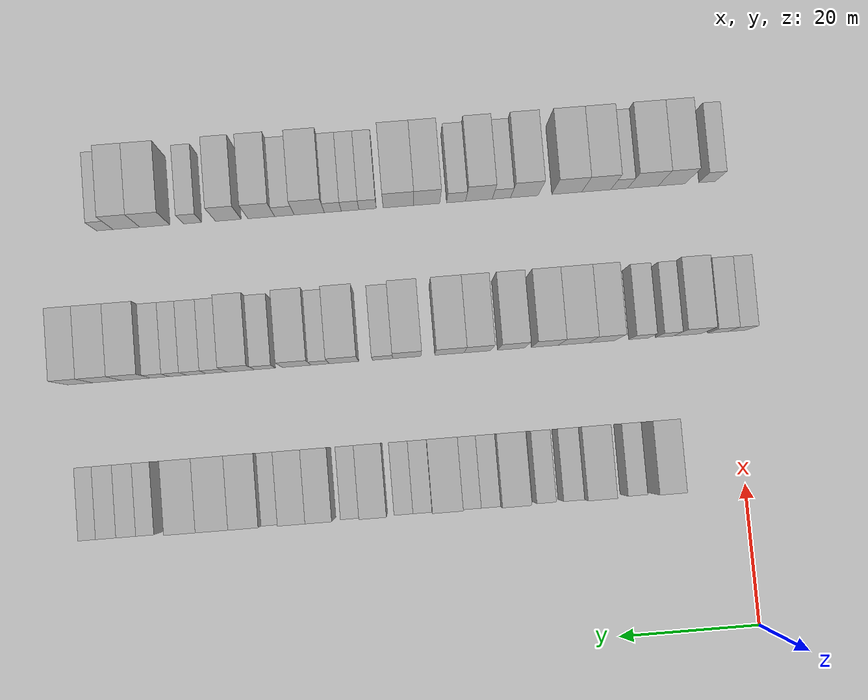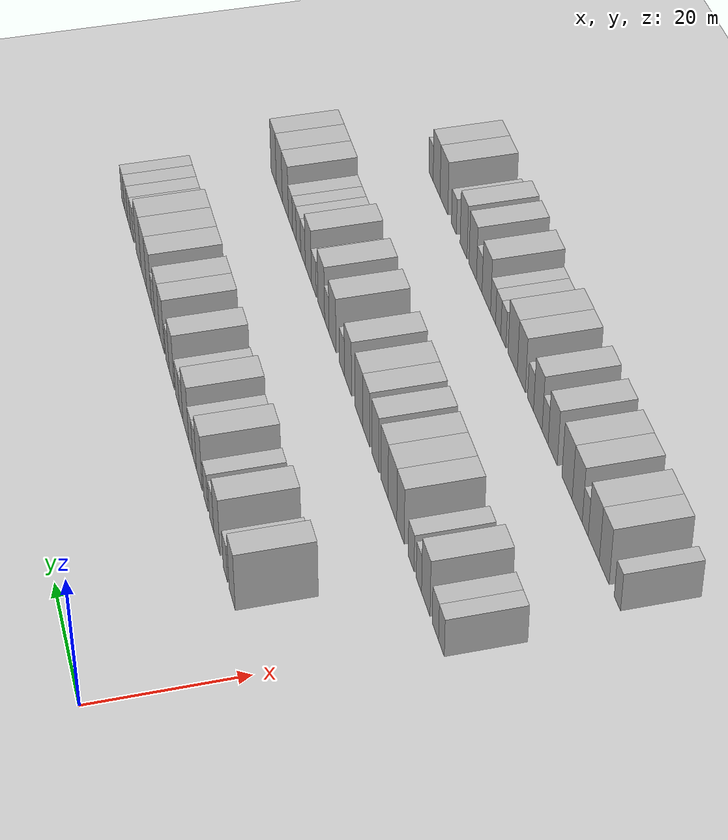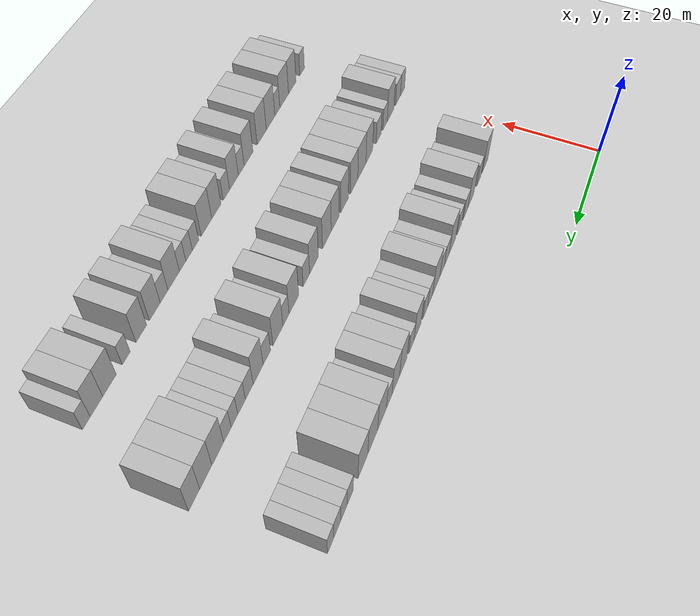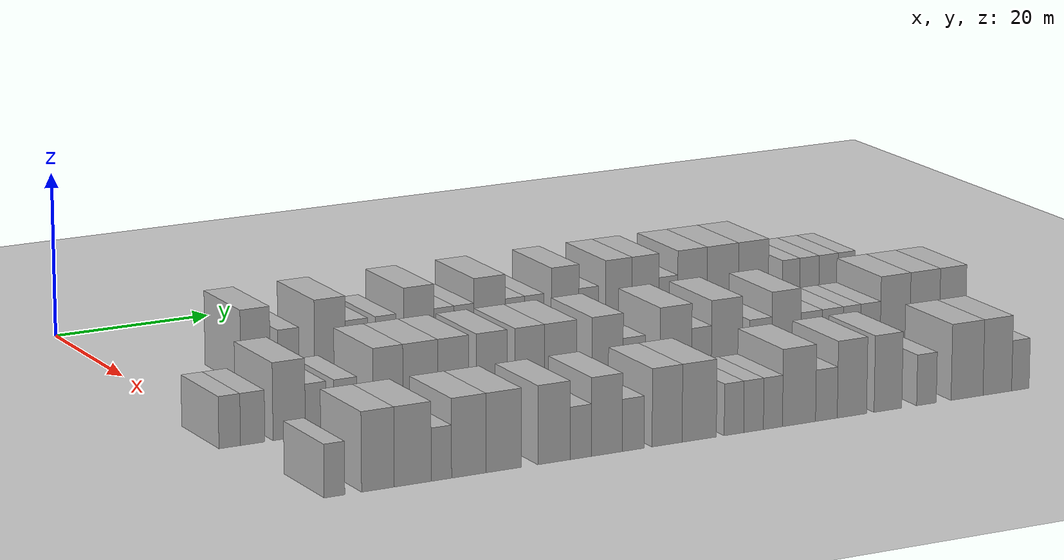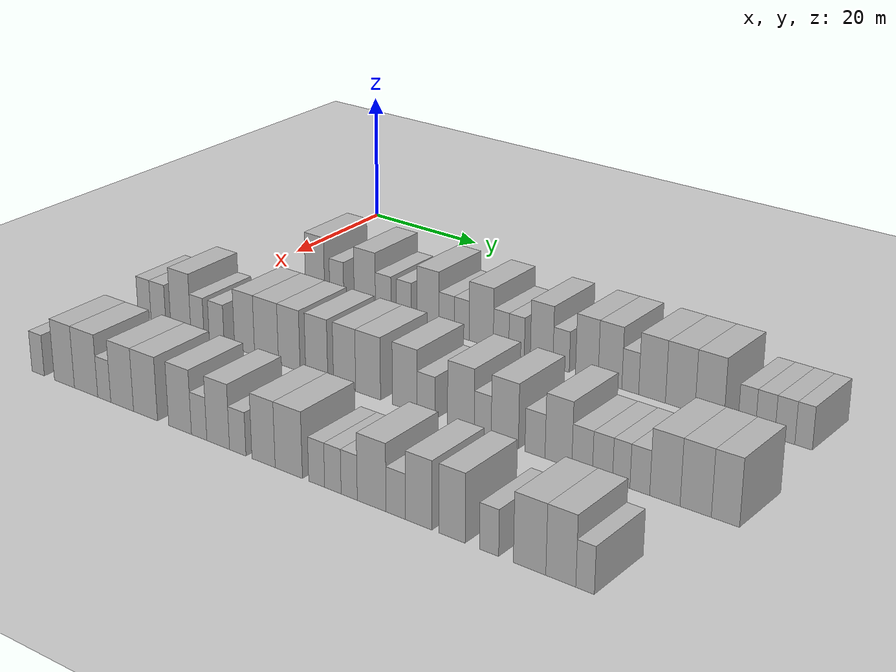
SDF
<sdf version="1.6">
 <world name="default">
  <include><name>ground_plane_1</name><uri>model://HANNAS_ground_plane</uri></include>
  <model name="building_96">
   <static>1</static>
   <pose>25.0000 12.4111 0 0.000000 0.000000 0.000000</pose>
   <link name="link">
    <pose>0 0 4.50 0 0 0</pose>
    <collision name="collision"><geometry><box><size>10.0000 3.7459 9.0000</size></box></geometry></collision>
    <visual name="visual">
     <cast_shadows>0</cast_shadows>
     <geometry><box><size>10.0000 3.7459 9.0000</size></box></geometry>
     <material>
      <script>
       <uri>model://HANNAS_wall/materials/scripts</uri>
       <uri>model://HANNAS_wall/materials/textures</uri>
       <name>vrc/HANNAS_wall</name>
      </script>
     </material>
    </visual>
   </link>
  </model>
  <model name="building_97">
   <static>1</static>
   <pose>25.0000 16.6380 0 0.000000 0.000000 0.000000</pose>
   <link name="link">
    <pose>0 0 3.00 0 0 0</pose>
    <collision name="collision"><geometry><box><size>10.0000 2.7080 6.0000</size></box></geometry></collision>
    <visual name="visual">
     <cast_shadows>0</cast_shadows>
     <geometry><box><size>10.0000 2.7080 6.0000</size></box></geometry>
     <material>
      <script>
       <uri>model://HANNAS_wall/materials/scripts</uri>
       <uri>model://HANNAS_wall/materials/textures</uri>
       <name>vrc/HANNAS_wall</name>
      </script>
     </material>
    </visual>
   </link>
  </model>
  <model name="building_98">
   <static>1</static>
   <pose>25.0000 21.9970 0 0.000000 0.000000 0.000000</pose>
   <link name="link">
    <pose>0 0 4.50 0 0 0</pose>
    <collision name="collision"><geometry><box><size>10.0000 4.0098 9.0000</size></box></geometry></collision>
    <visual name="visual">
     <cast_shadows>0</cast_shadows>
     <geometry><box><size>10.0000 4.0098 9.0000</size></box></geometry>
     <material>
      <script>
       <uri>model://HANNAS_wall/materials/scripts</uri>
       <uri>model://HANNAS_wall/materials/textures</uri>
       <name>vrc/HANNAS_wall</name>
      </script>
     </material>
    </visual>
   </link>
  </model>
  <model name="building_99">
   <static>1</static>
   <pose>25.0000 25.4494 0 0.000000 0.000000 0.000000</pose>
   <link name="link">
    <pose>0 0 3.00 0 0 0</pose>
    <collision name="collision"><geometry><box><size>10.0000 2.8951 6.0000</size></box></geometry></collision>
    <visual name="visual">
     <cast_shadows>0</cast_shadows>
     <geometry><box><size>10.0000 2.8951 6.0000</size></box></geometry>
     <material>
      <script>
       <uri>model://HANNAS_wall/materials/scripts</uri>
       <uri>model://HANNAS_wall/materials/textures</uri>
       <name>vrc/HANNAS_wall</name>
      </script>
     </material>
    </visual>
   </link>
  </model>
  <model name="building_100">
   <static>1</static>
   <pose>25.0000 29.2543 0 0.000000 0.000000 0.000000</pose>
   <link name="link">
    <pose>0 0 3.00 0 0 0</pose>
    <collision name="collision"><geometry><box><size>10.0000 2.7147 6.0000</size></box></geometry></collision>
    <visual name="visual">
     <cast_shadows>0</cast_shadows>
     <geometry><box><size>10.0000 2.7147 6.0000</size></box></geometry>
     <material>
      <script>
       <uri>model://HANNAS_wall/materials/scripts</uri>
       <uri>model://HANNAS_wall/materials/textures</uri>
       <name>vrc/HANNAS_wall</name>
      </script>
     </material>
    </visual>
   </link>
  </model>
  <model name="building_101">
   <static>1</static>
   <pose>25.0000 33.6059 0 0.000000 0.000000 0.000000</pose>
   <link name="link">
    <pose>0 0 4.50 0 0 0</pose>
    <collision name="collision"><geometry><box><size>10.0000 3.9884 9.0000</size></box></geometry></collision>
    <visual name="visual">
     <cast_shadows>0</cast_shadows>
     <geometry><box><size>10.0000 3.9884 9.0000</size></box></geometry>
     <material>
      <script>
       <uri>model://HANNAS_wall/materials/scripts</uri>
       <uri>model://HANNAS_wall/materials/textures</uri>
       <name>vrc/HANNAS_wall</name>
      </script>
     </material>
    </visual>
   </link>
  </model>
  <model name="building_102">
   <static>1</static>
   <pose>25.0000 36.9413 0 0.000000 0.000000 0.000000</pose>
   <link name="link">
    <pose>0 0 3.00 0 0 0</pose>
    <collision name="collision"><geometry><box><size>10.0000 2.6824 6.0000</size></box></geometry></collision>
    <visual name="visual">
     <cast_shadows>0</cast_shadows>
     <geometry><box><size>10.0000 2.6824 6.0000</size></box></geometry>
     <material>
      <script>
       <uri>model://HANNAS_wall/materials/scripts</uri>
       <uri>model://HANNAS_wall/materials/textures</uri>
       <name>vrc/HANNAS_wall</name>
      </script>
     </material>
    </visual>
   </link>
  </model>
  <model name="building_103">
   <static>1</static>
   <pose>25.0000 39.5929 0 0.000000 0.000000 0.000000</pose>
   <link name="link">
    <pose>0 0 3.00 0 0 0</pose>
    <collision name="collision"><geometry><box><size>10.0000 2.6208 6.0000</size></box></geometry></collision>
    <visual name="visual">
     <cast_shadows>0</cast_shadows>
     <geometry><box><size>10.0000 2.6208 6.0000</size></box></geometry>
     <material>
      <script>
       <uri>model://HANNAS_wall/materials/scripts</uri>
       <uri>model://HANNAS_wall/materials/textures</uri>
       <name>vrc/HANNAS_wall</name>
      </script>
     </material>
    </visual>
   </link>
  </model>
  <model name="building_104">
   <static>1</static>
   <pose>25.0000 42.9939 0 0.000000 0.000000 0.000000</pose>
   <link name="link">
    <pose>0 0 4.50 0 0 0</pose>
    <collision name="collision"><geometry><box><size>10.0000 4.1811 9.0000</size></box></geometry></collision>
    <visual name="visual">
     <cast_shadows>0</cast_shadows>
     <geometry><box><size>10.0000 4.1811 9.0000</size></box></geometry>
     <material>
      <script>
       <uri>model://HANNAS_wall/materials/scripts</uri>
       <uri>model://HANNAS_wall/materials/textures</uri>
       <name>vrc/HANNAS_wall</name>
      </script>
     </material>
    </visual>
   </link>
  </model>
  <model name="building_105">
   <static>1</static>
   <pose>25.0000 46.4009 0 0.000000 0.000000 0.000000</pose>
   <link name="link">
    <pose>0 0 3.00 0 0 0</pose>
    <collision name="collision"><geometry><box><size>10.0000 2.6329 6.0000</size></box></geometry></collision>
    <visual name="visual">
     <cast_shadows>0</cast_shadows>
     <geometry><box><size>10.0000 2.6329 6.0000</size></box></geometry>
     <material>
      <script>
       <uri>model://HANNAS_wall/materials/scripts</uri>
       <uri>model://HANNAS_wall/materials/textures</uri>
       <name>vrc/HANNAS_wall</name>
      </script>
     </material>
    </visual>
   </link>
  </model>
  <model name="building_106">
   <static>1</static>
   <pose>25.0000 49.0237 0 0.000000 0.000000 0.000000</pose>
   <link name="link">
    <pose>0 0 3.00 0 0 0</pose>
    <collision name="collision"><geometry><box><size>10.0000 2.6128 6.0000</size></box></geometry></collision>
    <visual name="visual">
     <cast_shadows>0</cast_shadows>
     <geometry><box><size>10.0000 2.6128 6.0000</size></box></geometry>
     <material>
      <script>
       <uri>model://HANNAS_wall/materials/scripts</uri>
       <uri>model://HANNAS_wall/materials/textures</uri>
       <name>vrc/HANNAS_wall</name>
      </script>
     </material>
    </visual>
   </link>
  </model>
  <model name="building_107">
   <static>1</static>
   <pose>25.0000 53.1922 0 0.000000 0.000000 0.000000</pose>
   <link name="link">
    <pose>0 0 4.50 0 0 0</pose>
    <collision name="collision"><geometry><box><size>10.0000 3.7241 9.0000</size></box></geometry></collision>
    <visual name="visual">
     <cast_shadows>0</cast_shadows>
     <geometry><box><size>10.0000 3.7241 9.0000</size></box></geometry>
     <material>
      <script>
       <uri>model://HANNAS_wall/materials/scripts</uri>
       <uri>model://HANNAS_wall/materials/textures</uri>
       <name>vrc/HANNAS_wall</name>
      </script>
     </material>
    </visual>
   </link>
  </model>
  <model name="building_108">
   <static>1</static>
   <pose>25.0000 56.3885 0 0.000000 0.000000 0.000000</pose>
   <link name="link">
    <pose>0 0 3.00 0 0 0</pose>
    <collision name="collision"><geometry><box><size>10.0000 2.6685 6.0000</size></box></geometry></collision>
    <visual name="visual">
     <cast_shadows>0</cast_shadows>
     <geometry><box><size>10.0000 2.6685 6.0000</size></box></geometry>
     <material>
      <script>
       <uri>model://HANNAS_wall/materials/scripts</uri>
       <uri>model://HANNAS_wall/materials/textures</uri>
       <name>vrc/HANNAS_wall</name>
      </script>
     </material>
    </visual>
   </link>
  </model>
  <model name="building_109">
   <static>1</static>
   <pose>25.0000 60.5273 0 0.000000 0.000000 0.000000</pose>
   <link name="link">
    <pose>0 0 4.50 0 0 0</pose>
    <collision name="collision"><geometry><box><size>10.0000 3.6093 9.0000</size></box></geometry></collision>
    <visual name="visual">
     <cast_shadows>0</cast_shadows>
     <geometry><box><size>10.0000 3.6093 9.0000</size></box></geometry>
     <material>
      <script>
       <uri>model://HANNAS_wall/materials/scripts</uri>
       <uri>model://HANNAS_wall/materials/textures</uri>
       <name>vrc/HANNAS_wall</name>
      </script>
     </material>
    </visual>
   </link>
  </model>
  <model name="building_110">
   <static>1</static>
   <pose>25.0000 64.1964 0 0.000000 0.000000 0.000000</pose>
   <link name="link">
    <pose>0 0 4.50 0 0 0</pose>
    <collision name="collision"><geometry><box><size>10.0000 3.7289 9.0000</size></box></geometry></collision>
    <visual name="visual">
     <cast_shadows>0</cast_shadows>
     <geometry><box><size>10.0000 3.7289 9.0000</size></box></geometry>
     <material>
      <script>
       <uri>model://HANNAS_wall/materials/scripts</uri>
       <uri>model://HANNAS_wall/materials/textures</uri>
       <name>vrc/HANNAS_wall</name>
      </script>
     </material>
    </visual>
   </link>
  </model>
  <model name="building_111">
   <static>1</static>
   <pose>25.0000 67.3633 0 0.000000 0.000000 0.000000</pose>
   <link name="link">
    <pose>0 0 3.00 0 0 0</pose>
    <collision name="collision"><geometry><box><size>10.0000 2.6048 6.0000</size></box></geometry></collision>
    <visual name="visual">
     <cast_shadows>0</cast_shadows>
     <geometry><box><size>10.0000 2.6048 6.0000</size></box></geometry>
     <material>
      <script>
       <uri>model://HANNAS_wall/materials/scripts</uri>
       <uri>model://HANNAS_wall/materials/textures</uri>
       <name>vrc/HANNAS_wall</name>
      </script>
     </material>
    </visual>
   </link>
  </model>
  <model name="building_112">
   <static>1</static>
   <pose>25.0000 70.7081 0 0.000000 0.000000 0.000000</pose>
   <link name="link">
    <pose>0 0 4.50 0 0 0</pose>
    <collision name="collision"><geometry><box><size>10.0000 4.0848 9.0000</size></box></geometry></collision>
    <visual name="visual">
     <cast_shadows>0</cast_shadows>
     <geometry><box><size>10.0000 4.0848 9.0000</size></box></geometry>
     <material>
      <script>
       <uri>model://HANNAS_wall/materials/scripts</uri>
       <uri>model://HANNAS_wall/materials/textures</uri>
       <name>vrc/HANNAS_wall</name>
      </script>
     </material>
    </visual>
   </link>
  </model>
  <model name="building_113">
   <static>1</static>
   <pose>25.0000 74.9535 0 0.000000 0.000000 0.000000</pose>
   <link name="link">
    <pose>0 0 4.50 0 0 0</pose>
    <collision name="collision"><geometry><box><size>10.0000 4.4061 9.0000</size></box></geometry></collision>
    <visual name="visual">
     <cast_shadows>0</cast_shadows>
     <geometry><box><size>10.0000 4.4061 9.0000</size></box></geometry>
     <material>
      <script>
       <uri>model://HANNAS_wall/materials/scripts</uri>
       <uri>model://HANNAS_wall/materials/textures</uri>
       <name>vrc/HANNAS_wall</name>
      </script>
     </material>
    </visual>
   </link>
  </model>
  <model name="building_114">
   <static>1</static>
   <pose>25.0000 79.2850 0 0.000000 0.000000 0.000000</pose>
   <link name="link">
    <pose>0 0 4.50 0 0 0</pose>
    <collision name="collision"><geometry><box><size>10.0000 4.2570 9.0000</size></box></geometry></collision>
    <visual name="visual">
     <cast_shadows>0</cast_shadows>
     <geometry><box><size>10.0000 4.2570 9.0000</size></box></geometry>
     <material>
      <script>
       <uri>model://HANNAS_wall/materials/scripts</uri>
       <uri>model://HANNAS_wall/materials/textures</uri>
       <name>vrc/HANNAS_wall</name>
      </script>
     </material>
    </visual>
   </link>
  </model>
  <model name="building_115">
   <static>1</static>
   <pose>25.0000 84.6593 0 0.000000 0.000000 0.000000</pose>
   <link name="link">
    <pose>0 0 3.00 0 0 0</pose>
    <collision name="collision"><geometry><box><size>10.0000 2.4915 6.0000</size></box></geometry></collision>
    <visual name="visual">
     <cast_shadows>0</cast_shadows>
     <geometry><box><size>10.0000 2.4915 6.0000</size></box></geometry>
     <material>
      <script>
       <uri>model://HANNAS_wall/materials/scripts</uri>
       <uri>model://HANNAS_wall/materials/textures</uri>
       <name>vrc/HANNAS_wall</name>
      </script>
     </material>
    </visual>
   </link>
  </model>
  <model name="building_116">
   <static>1</static>
   <pose>25.0000 87.2728 0 0.000000 0.000000 0.000000</pose>
   <link name="link">
    <pose>0 0 3.00 0 0 0</pose>
    <collision name="collision"><geometry><box><size>10.0000 2.7356 6.0000</size></box></geometry></collision>
    <visual name="visual">
     <cast_shadows>0</cast_shadows>
     <geometry><box><size>10.0000 2.7356 6.0000</size></box></geometry>
     <material>
      <script>
       <uri>model://HANNAS_wall/materials/scripts</uri>
       <uri>model://HANNAS_wall/materials/textures</uri>
       <name>vrc/HANNAS_wall</name>
      </script>
     </material>
    </visual>
   </link>
  </model>
  <model name="building_117">
   <static>1</static>
   <pose>25.0000 90.0400 0 0.000000 0.000000 0.000000</pose>
   <link name="link">
    <pose>0 0 3.00 0 0 0</pose>
    <collision name="collision"><geometry><box><size>10.0000 2.7989 6.0000</size></box></geometry></collision>
    <visual name="visual">
     <cast_shadows>0</cast_shadows>
     <geometry><box><size>10.0000 2.7989 6.0000</size></box></geometry>
     <material>
      <script>
       <uri>model://HANNAS_wall/materials/scripts</uri>
       <uri>model://HANNAS_wall/materials/textures</uri>
       <name>vrc/HANNAS_wall</name>
      </script>
     </material>
    </visual>
   </link>
  </model>
  <model name="building_118">
   <static>1</static>
   <pose>25.0000 92.6437 0 0.000000 0.000000 0.000000</pose>
   <link name="link">
    <pose>0 0 3.00 0 0 0</pose>
    <collision name="collision"><geometry><box><size>10.0000 2.4084 6.0000</size></box></geometry></collision>
    <visual name="visual">
     <cast_shadows>0</cast_shadows>
     <geometry><box><size>10.0000 2.4084 6.0000</size></box></geometry>
     <material>
      <script>
       <uri>model://HANNAS_wall/materials/scripts</uri>
       <uri>model://HANNAS_wall/materials/textures</uri>
       <name>vrc/HANNAS_wall</name>
      </script>
     </material>
    </visual>
   </link>
  </model>
  <model name="building_283">
   <static>1</static>
   <pose>47.0000 -1.0325 0 0.000000 0.000000 0.000000</pose>
   <link name="link">
    <pose>0 0 3.00 0 0 0</pose>
    <collision name="collision"><geometry><box><size>10.0000 2.6264 6.0000</size></box></geometry></collision>
    <visual name="visual">
     <cast_shadows>0</cast_shadows>
     <geometry><box><size>10.0000 2.6264 6.0000</size></box></geometry>
     <material>
      <script>
       <uri>model://HANNAS_wall/materials/scripts</uri>
       <uri>model://HANNAS_wall/materials/textures</uri>
       <name>vrc/HANNAS_wall</name>
      </script>
     </material>
    </visual>
   </link>
  </model>
  <model name="building_284">
   <static>1</static>
   <pose>47.0000 1.7733 0 0.000000 0.000000 0.000000</pose>
   <link name="link">
    <pose>0 0 3.00 0 0 0</pose>
    <collision name="collision"><geometry><box><size>10.0000 2.9852 6.0000</size></box></geometry></collision>
    <visual name="visual">
     <cast_shadows>0</cast_shadows>
     <geometry><box><size>10.0000 2.9852 6.0000</size></box></geometry>
     <material>
      <script>
       <uri>model://HANNAS_wall/materials/scripts</uri>
       <uri>model://HANNAS_wall/materials/textures</uri>
       <name>vrc/HANNAS_wall</name>
      </script>
     </material>
    </visual>
   </link>
  </model>
  <model name="building_285">
   <static>1</static>
   <pose>47.0000 6.2586 0 0.000000 0.000000 0.000000</pose>
   <link name="link">
    <pose>0 0 4.50 0 0 0</pose>
    <collision name="collision"><geometry><box><size>10.0000 3.9854 9.0000</size></box></geometry></collision>
    <visual name="visual">
     <cast_shadows>0</cast_shadows>
     <geometry><box><size>10.0000 3.9854 9.0000</size></box></geometry>
     <material>
      <script>
       <uri>model://HANNAS_wall/materials/scripts</uri>
       <uri>model://HANNAS_wall/materials/textures</uri>
       <name>vrc/HANNAS_wall</name>
      </script>
     </material>
    </visual>
   </link>
  </model>
  <model name="building_286">
   <static>1</static>
   <pose>47.0000 9.5401 0 0.000000 0.000000 0.000000</pose>
   <link name="link">
    <pose>0 0 3.00 0 0 0</pose>
    <collision name="collision"><geometry><box><size>10.0000 2.5777 6.0000</size></box></geometry></collision>
    <visual name="visual">
     <cast_shadows>0</cast_shadows>
     <geometry><box><size>10.0000 2.5777 6.0000</size></box></geometry>
     <material>
      <script>
       <uri>model://HANNAS_wall/materials/scripts</uri>
       <uri>model://HANNAS_wall/materials/textures</uri>
       <name>vrc/HANNAS_wall</name>
      </script>
     </material>
    </visual>
   </link>
  </model>
  <model name="building_287">
   <static>1</static>
   <pose>47.0000 13.2654 0 0.000000 0.000000 0.000000</pose>
   <link name="link">
    <pose>0 0 3.00 0 0 0</pose>
    <collision name="collision"><geometry><box><size>10.0000 2.8728 6.0000</size></box></geometry></collision>
    <visual name="visual">
     <cast_shadows>0</cast_shadows>
     <geometry><box><size>10.0000 2.8728 6.0000</size></box></geometry>
     <material>
      <script>
       <uri>model://HANNAS_wall/materials/scripts</uri>
       <uri>model://HANNAS_wall/materials/textures</uri>
       <name>vrc/HANNAS_wall</name>
      </script>
     </material>
    </visual>
   </link>
  </model>
  <model name="building_288">
   <static>1</static>
   <pose>47.0000 18.5778 0 0.000000 0.000000 0.000000</pose>
   <link name="link">
    <pose>0 0 4.50 0 0 0</pose>
    <collision name="collision"><geometry><box><size>10.0000 3.7522 9.0000</size></box></geometry></collision>
    <visual name="visual">
     <cast_shadows>0</cast_shadows>
     <geometry><box><size>10.0000 3.7522 9.0000</size></box></geometry>
     <material>
      <script>
       <uri>model://HANNAS_wall/materials/scripts</uri>
       <uri>model://HANNAS_wall/materials/textures</uri>
       <name>vrc/HANNAS_wall</name>
      </script>
     </material>
    </visual>
   </link>
  </model>
  <model name="building_289">
   <static>1</static>
   <pose>47.0000 22.6607 0 0.000000 0.000000 0.000000</pose>
   <link name="link">
    <pose>0 0 4.50 0 0 0</pose>
    <collision name="collision"><geometry><box><size>10.0000 4.4136 9.0000</size></box></geometry></collision>
    <visual name="visual">
     <cast_shadows>0</cast_shadows>
     <geometry><box><size>10.0000 4.4136 9.0000</size></box></geometry>
     <material>
      <script>
       <uri>model://HANNAS_wall/materials/scripts</uri>
       <uri>model://HANNAS_wall/materials/textures</uri>
       <name>vrc/HANNAS_wall</name>
      </script>
     </material>
    </visual>
   </link>
  </model>
  <model name="building_290">
   <static>1</static>
   <pose>47.0000 26.8235 0 0.000000 0.000000 0.000000</pose>
   <link name="link">
    <pose>0 0 4.50 0 0 0</pose>
    <collision name="collision"><geometry><box><size>10.0000 3.9121 9.0000</size></box></geometry></collision>
    <visual name="visual">
     <cast_shadows>0</cast_shadows>
     <geometry><box><size>10.0000 3.9121 9.0000</size></box></geometry>
     <material>
      <script>
       <uri>model://HANNAS_wall/materials/scripts</uri>
       <uri>model://HANNAS_wall/materials/textures</uri>
       <name>vrc/HANNAS_wall</name>
      </script>
     </material>
    </visual>
   </link>
  </model>
  <model name="building_291">
   <static>1</static>
   <pose>47.0000 31.7365 0 0.000000 0.000000 0.000000</pose>
   <link name="link">
    <pose>0 0 4.50 0 0 0</pose>
    <collision name="collision"><geometry><box><size>10.0000 3.9137 9.0000</size></box></geometry></collision>
    <visual name="visual">
     <cast_shadows>0</cast_shadows>
     <geometry><box><size>10.0000 3.9137 9.0000</size></box></geometry>
     <material>
      <script>
       <uri>model://HANNAS_wall/materials/scripts</uri>
       <uri>model://HANNAS_wall/materials/textures</uri>
       <name>vrc/HANNAS_wall</name>
      </script>
     </material>
    </visual>
   </link>
  </model>
  <model name="building_292">
   <static>1</static>
   <pose>47.0000 36.6117 0 0.000000 0.000000 0.000000</pose>
   <link name="link">
    <pose>0 0 4.50 0 0 0</pose>
    <collision name="collision"><geometry><box><size>10.0000 3.8368 9.0000</size></box></geometry></collision>
    <visual name="visual">
     <cast_shadows>0</cast_shadows>
     <geometry><box><size>10.0000 3.8368 9.0000</size></box></geometry>
     <material>
      <script>
       <uri>model://HANNAS_wall/materials/scripts</uri>
       <uri>model://HANNAS_wall/materials/textures</uri>
       <name>vrc/HANNAS_wall</name>
      </script>
     </material>
    </visual>
   </link>
  </model>
  <model name="building_293">
   <static>1</static>
   <pose>47.0000 40.6434 0 0.000000 0.000000 0.000000</pose>
   <link name="link">
    <pose>0 0 4.50 0 0 0</pose>
    <collision name="collision"><geometry><box><size>10.0000 4.2265 9.0000</size></box></geometry></collision>
    <visual name="visual">
     <cast_shadows>0</cast_shadows>
     <geometry><box><size>10.0000 4.2265 9.0000</size></box></geometry>
     <material>
      <script>
       <uri>model://HANNAS_wall/materials/scripts</uri>
       <uri>model://HANNAS_wall/materials/textures</uri>
       <name>vrc/HANNAS_wall</name>
      </script>
     </material>
    </visual>
   </link>
  </model>
  <model name="building_294">
   <static>1</static>
   <pose>47.0000 46.7934 0 0.000000 0.000000 0.000000</pose>
   <link name="link">
    <pose>0 0 4.50 0 0 0</pose>
    <collision name="collision"><geometry><box><size>10.0000 4.0736 9.0000</size></box></geometry></collision>
    <visual name="visual">
     <cast_shadows>0</cast_shadows>
     <geometry><box><size>10.0000 4.0736 9.0000</size></box></geometry>
     <material>
      <script>
       <uri>model://HANNAS_wall/materials/scripts</uri>
       <uri>model://HANNAS_wall/materials/textures</uri>
       <name>vrc/HANNAS_wall</name>
      </script>
     </material>
    </visual>
   </link>
  </model>
  <model name="building_295">
   <static>1</static>
   <pose>47.0000 50.2850 0 0.000000 0.000000 0.000000</pose>
   <link name="link">
    <pose>0 0 3.00 0 0 0</pose>
    <collision name="collision"><geometry><box><size>10.0000 2.9095 6.0000</size></box></geometry></collision>
    <visual name="visual">
     <cast_shadows>0</cast_shadows>
     <geometry><box><size>10.0000 2.9095 6.0000</size></box></geometry>
     <material>
      <script>
       <uri>model://HANNAS_wall/materials/scripts</uri>
       <uri>model://HANNAS_wall/materials/textures</uri>
       <name>vrc/HANNAS_wall</name>
      </script>
     </material>
    </visual>
   </link>
  </model>
  <model name="building_296">
   <static>1</static>
   <pose>47.0000 55.8460 0 0.000000 0.000000 0.000000</pose>
   <link name="link">
    <pose>0 0 4.50 0 0 0</pose>
    <collision name="collision"><geometry><box><size>10.0000 4.2126 9.0000</size></box></geometry></collision>
    <visual name="visual">
     <cast_shadows>0</cast_shadows>
     <geometry><box><size>10.0000 4.2126 9.0000</size></box></geometry>
     <material>
      <script>
       <uri>model://HANNAS_wall/materials/scripts</uri>
       <uri>model://HANNAS_wall/materials/textures</uri>
       <name>vrc/HANNAS_wall</name>
      </script>
     </material>
    </visual>
   </link>
  </model>
  <model name="building_297">
   <static>1</static>
   <pose>47.0000 59.2749 0 0.000000 0.000000 0.000000</pose>
   <link name="link">
    <pose>0 0 3.00 0 0 0</pose>
    <collision name="collision"><geometry><box><size>10.0000 2.6451 6.0000</size></box></geometry></collision>
    <visual name="visual">
     <cast_shadows>0</cast_shadows>
     <geometry><box><size>10.0000 2.6451 6.0000</size></box></geometry>
     <material>
      <script>
       <uri>model://HANNAS_wall/materials/scripts</uri>
       <uri>model://HANNAS_wall/materials/textures</uri>
       <name>vrc/HANNAS_wall</name>
      </script>
     </material>
    </visual>
   </link>
  </model>
  <model name="building_298">
   <static>1</static>
   <pose>47.0000 62.6784 0 0.000000 0.000000 0.000000</pose>
   <link name="link">
    <pose>0 0 4.50 0 0 0</pose>
    <collision name="collision"><geometry><box><size>10.0000 4.1620 9.0000</size></box></geometry></collision>
    <visual name="visual">
     <cast_shadows>0</cast_shadows>
     <geometry><box><size>10.0000 4.1620 9.0000</size></box></geometry>
     <material>
      <script>
       <uri>model://HANNAS_wall/materials/scripts</uri>
       <uri>model://HANNAS_wall/materials/textures</uri>
       <name>vrc/HANNAS_wall</name>
      </script>
     </material>
    </visual>
   </link>
  </model>
  <model name="building_299">
   <static>1</static>
   <pose>47.0000 67.2582 0 0.000000 0.000000 0.000000</pose>
   <link name="link">
    <pose>0 0 3.00 0 0 0</pose>
    <collision name="collision"><geometry><box><size>10.0000 2.9976 6.0000</size></box></geometry></collision>
    <visual name="visual">
     <cast_shadows>0</cast_shadows>
     <geometry><box><size>10.0000 2.9976 6.0000</size></box></geometry>
     <material>
      <script>
       <uri>model://HANNAS_wall/materials/scripts</uri>
       <uri>model://HANNAS_wall/materials/textures</uri>
       <name>vrc/HANNAS_wall</name>
      </script>
     </material>
    </visual>
   </link>
  </model>
  <model name="building_300">
   <static>1</static>
   <pose>47.0000 70.7269 0 0.000000 0.000000 0.000000</pose>
   <link name="link">
    <pose>0 0 4.50 0 0 0</pose>
    <collision name="collision"><geometry><box><size>10.0000 3.9397 9.0000</size></box></geometry></collision>
    <visual name="visual">
     <cast_shadows>0</cast_shadows>
     <geometry><box><size>10.0000 3.9397 9.0000</size></box></geometry>
     <material>
      <script>
       <uri>model://HANNAS_wall/materials/scripts</uri>
       <uri>model://HANNAS_wall/materials/textures</uri>
       <name>vrc/HANNAS_wall</name>
      </script>
     </material>
    </visual>
   </link>
  </model>
  <model name="building_301">
   <static>1</static>
   <pose>47.0000 74.1875 0 0.000000 0.000000 0.000000</pose>
   <link name="link">
    <pose>0 0 3.00 0 0 0</pose>
    <collision name="collision"><geometry><box><size>10.0000 2.9816 6.0000</size></box></geometry></collision>
    <visual name="visual">
     <cast_shadows>0</cast_shadows>
     <geometry><box><size>10.0000 2.9816 6.0000</size></box></geometry>
     <material>
      <script>
       <uri>model://HANNAS_wall/materials/scripts</uri>
       <uri>model://HANNAS_wall/materials/textures</uri>
       <name>vrc/HANNAS_wall</name>
      </script>
     </material>
    </visual>
   </link>
  </model>
  <model name="building_302">
   <static>1</static>
   <pose>47.0000 77.1062 0 0.000000 0.000000 0.000000</pose>
   <link name="link">
    <pose>0 0 3.00 0 0 0</pose>
    <collision name="collision"><geometry><box><size>10.0000 2.8558 6.0000</size></box></geometry></collision>
    <visual name="visual">
     <cast_shadows>0</cast_shadows>
     <geometry><box><size>10.0000 2.8558 6.0000</size></box></geometry>
     <material>
      <script>
       <uri>model://HANNAS_wall/materials/scripts</uri>
       <uri>model://HANNAS_wall/materials/textures</uri>
       <name>vrc/HANNAS_wall</name>
      </script>
     </material>
    </visual>
   </link>
  </model>
  <model name="building_303">
   <static>1</static>
   <pose>47.0000 79.7617 0 0.000000 0.000000 0.000000</pose>
   <link name="link">
    <pose>0 0 3.00 0 0 0</pose>
    <collision name="collision"><geometry><box><size>10.0000 2.4552 6.0000</size></box></geometry></collision>
    <visual name="visual">
     <cast_shadows>0</cast_shadows>
     <geometry><box><size>10.0000 2.4552 6.0000</size></box></geometry>
     <material>
      <script>
       <uri>model://HANNAS_wall/materials/scripts</uri>
       <uri>model://HANNAS_wall/materials/textures</uri>
       <name>vrc/HANNAS_wall</name>
      </script>
     </material>
    </visual>
   </link>
  </model>
  <model name="building_304">
   <static>1</static>
   <pose>47.0000 82.3620 0 0.000000 0.000000 0.000000</pose>
   <link name="link">
    <pose>0 0 3.00 0 0 0</pose>
    <collision name="collision"><geometry><box><size>10.0000 2.7454 6.0000</size></box></geometry></collision>
    <visual name="visual">
     <cast_shadows>0</cast_shadows>
     <geometry><box><size>10.0000 2.7454 6.0000</size></box></geometry>
     <material>
      <script>
       <uri>model://HANNAS_wall/materials/scripts</uri>
       <uri>model://HANNAS_wall/materials/textures</uri>
       <name>vrc/HANNAS_wall</name>
      </script>
     </material>
    </visual>
   </link>
  </model>
  <model name="building_305">
   <static>1</static>
   <pose>47.0000 85.8060 0 0.000000 0.000000 0.000000</pose>
   <link name="link">
    <pose>0 0 4.50 0 0 0</pose>
    <collision name="collision"><geometry><box><size>10.0000 4.1425 9.0000</size></box></geometry></collision>
    <visual name="visual">
     <cast_shadows>0</cast_shadows>
     <geometry><box><size>10.0000 4.1425 9.0000</size></box></geometry>
     <material>
      <script>
       <uri>model://HANNAS_wall/materials/scripts</uri>
       <uri>model://HANNAS_wall/materials/textures</uri>
       <name>vrc/HANNAS_wall</name>
      </script>
     </material>
    </visual>
   </link>
  </model>
  <model name="building_306">
   <static>1</static>
   <pose>47.0000 89.9592 0 0.000000 0.000000 0.000000</pose>
   <link name="link">
    <pose>0 0 4.50 0 0 0</pose>
    <collision name="collision"><geometry><box><size>10.0000 4.1640 9.0000</size></box></geometry></collision>
    <visual name="visual">
     <cast_shadows>0</cast_shadows>
     <geometry><box><size>10.0000 4.1640 9.0000</size></box></geometry>
     <material>
      <script>
       <uri>model://HANNAS_wall/materials/scripts</uri>
       <uri>model://HANNAS_wall/materials/textures</uri>
       <name>vrc/HANNAS_wall</name>
      </script>
     </material>
    </visual>
   </link>
  </model>
  <model name="building_307">
   <static>1</static>
   <pose>47.0000 93.8943 0 0.000000 0.000000 0.000000</pose>
   <link name="link">
    <pose>0 0 4.50 0 0 0</pose>
    <collision name="collision"><geometry><box><size>10.0000 3.7062 9.0000</size></box></geometry></collision>
    <visual name="visual">
     <cast_shadows>0</cast_shadows>
     <geometry><box><size>10.0000 3.7062 9.0000</size></box></geometry>
     <material>
      <script>
       <uri>model://HANNAS_wall/materials/scripts</uri>
       <uri>model://HANNAS_wall/materials/textures</uri>
       <name>vrc/HANNAS_wall</name>
      </script>
     </material>
    </visual>
   </link>
  </model>
  <model name="building_467">
   <static>1</static>
   <pose>69.0000 1.1585 0 0.000000 0.000000 0.000000</pose>
   <link name="link">
    <pose>0 0 3.00 0 0 0</pose>
    <collision name="collision"><geometry><box><size>10.0000 2.4590 6.0000</size></box></geometry></collision>
    <visual name="visual">
     <cast_shadows>0</cast_shadows>
     <geometry><box><size>10.0000 2.4590 6.0000</size></box></geometry>
     <material>
      <script>
       <uri>model://HANNAS_wall/materials/scripts</uri>
       <uri>model://HANNAS_wall/materials/textures</uri>
       <name>vrc/HANNAS_wall</name>
      </script>
     </material>
    </visual>
   </link>
  </model>
  <model name="building_468">
   <static>1</static>
   <pose>69.0000 6.3527 0 0.000000 0.000000 0.000000</pose>
   <link name="link">
    <pose>0 0 4.50 0 0 0</pose>
    <collision name="collision"><geometry><box><size>10.0000 3.9294 9.0000</size></box></geometry></collision>
    <visual name="visual">
     <cast_shadows>0</cast_shadows>
     <geometry><box><size>10.0000 3.9294 9.0000</size></box></geometry>
     <material>
      <script>
       <uri>model://HANNAS_wall/materials/scripts</uri>
       <uri>model://HANNAS_wall/materials/textures</uri>
       <name>vrc/HANNAS_wall</name>
      </script>
     </material>
    </visual>
   </link>
  </model>
  <model name="building_469">
   <static>1</static>
   <pose>69.0000 10.5530 0 0.000000 0.000000 0.000000</pose>
   <link name="link">
    <pose>0 0 4.50 0 0 0</pose>
    <collision name="collision"><geometry><box><size>10.0000 4.4710 9.0000</size></box></geometry></collision>
    <visual name="visual">
     <cast_shadows>0</cast_shadows>
     <geometry><box><size>10.0000 4.4710 9.0000</size></box></geometry>
     <material>
      <script>
       <uri>model://HANNAS_wall/materials/scripts</uri>
       <uri>model://HANNAS_wall/materials/textures</uri>
       <name>vrc/HANNAS_wall</name>
      </script>
     </material>
    </visual>
   </link>
  </model>
  <model name="building_470">
   <static>1</static>
   <pose>69.0000 14.0249 0 0.000000 0.000000 0.000000</pose>
   <link name="link">
    <pose>0 0 3.00 0 0 0</pose>
    <collision name="collision"><geometry><box><size>10.0000 2.4728 6.0000</size></box></geometry></collision>
    <visual name="visual">
     <cast_shadows>0</cast_shadows>
     <geometry><box><size>10.0000 2.4728 6.0000</size></box></geometry>
     <material>
      <script>
       <uri>model://HANNAS_wall/materials/scripts</uri>
       <uri>model://HANNAS_wall/materials/textures</uri>
       <name>vrc/HANNAS_wall</name>
      </script>
     </material>
    </visual>
   </link>
  </model>
  <model name="building_471">
   <static>1</static>
   <pose>69.0000 17.3761 0 0.000000 0.000000 0.000000</pose>
   <link name="link">
    <pose>0 0 4.50 0 0 0</pose>
    <collision name="collision"><geometry><box><size>10.0000 4.2296 9.0000</size></box></geometry></collision>
    <visual name="visual">
     <cast_shadows>0</cast_shadows>
     <geometry><box><size>10.0000 4.2296 9.0000</size></box></geometry>
     <material>
      <script>
       <uri>model://HANNAS_wall/materials/scripts</uri>
       <uri>model://HANNAS_wall/materials/textures</uri>
       <name>vrc/HANNAS_wall</name>
      </script>
     </material>
    </visual>
   </link>
  </model>
  <model name="building_472">
   <static>1</static>
   <pose>69.0000 21.6774 0 0.000000 0.000000 0.000000</pose>
   <link name="link">
    <pose>0 0 4.50 0 0 0</pose>
    <collision name="collision"><geometry><box><size>10.0000 4.3729 9.0000</size></box></geometry></collision>
    <visual name="visual">
     <cast_shadows>0</cast_shadows>
     <geometry><box><size>10.0000 4.3729 9.0000</size></box></geometry>
     <material>
      <script>
       <uri>model://HANNAS_wall/materials/scripts</uri>
       <uri>model://HANNAS_wall/materials/textures</uri>
       <name>vrc/HANNAS_wall</name>
      </script>
     </material>
    </visual>
   </link>
  </model>
  <model name="building_473">
   <static>1</static>
   <pose>69.0000 27.8781 0 0.000000 0.000000 0.000000</pose>
   <link name="link">
    <pose>0 0 4.50 0 0 0</pose>
    <collision name="collision"><geometry><box><size>10.0000 4.0285 9.0000</size></box></geometry></collision>
    <visual name="visual">
     <cast_shadows>0</cast_shadows>
     <geometry><box><size>10.0000 4.0285 9.0000</size></box></geometry>
     <material>
      <script>
       <uri>model://HANNAS_wall/materials/scripts</uri>
       <uri>model://HANNAS_wall/materials/textures</uri>
       <name>vrc/HANNAS_wall</name>
      </script>
     </material>
    </visual>
   </link>
  </model>
  <model name="building_474">
   <static>1</static>
   <pose>69.0000 31.2332 0 0.000000 0.000000 0.000000</pose>
   <link name="link">
    <pose>0 0 3.00 0 0 0</pose>
    <collision name="collision"><geometry><box><size>10.0000 2.6818 6.0000</size></box></geometry></collision>
    <visual name="visual">
     <cast_shadows>0</cast_shadows>
     <geometry><box><size>10.0000 2.6818 6.0000</size></box></geometry>
     <material>
      <script>
       <uri>model://HANNAS_wall/materials/scripts</uri>
       <uri>model://HANNAS_wall/materials/textures</uri>
       <name>vrc/HANNAS_wall</name>
      </script>
     </material>
    </visual>
   </link>
  </model>
  <model name="building_475">
   <static>1</static>
   <pose>69.0000 34.5164 0 0.000000 0.000000 0.000000</pose>
   <link name="link">
    <pose>0 0 4.50 0 0 0</pose>
    <collision name="collision"><geometry><box><size>10.0000 3.8847 9.0000</size></box></geometry></collision>
    <visual name="visual">
     <cast_shadows>0</cast_shadows>
     <geometry><box><size>10.0000 3.8847 9.0000</size></box></geometry>
     <material>
      <script>
       <uri>model://HANNAS_wall/materials/scripts</uri>
       <uri>model://HANNAS_wall/materials/textures</uri>
       <name>vrc/HANNAS_wall</name>
      </script>
     </material>
    </visual>
   </link>
  </model>
  <model name="building_476">
   <static>1</static>
   <pose>69.0000 37.8412 0 0.000000 0.000000 0.000000</pose>
   <link name="link">
    <pose>0 0 3.00 0 0 0</pose>
    <collision name="collision"><geometry><box><size>10.0000 2.7648 6.0000</size></box></geometry></collision>
    <visual name="visual">
     <cast_shadows>0</cast_shadows>
     <geometry><box><size>10.0000 2.7648 6.0000</size></box></geometry>
     <material>
      <script>
       <uri>model://HANNAS_wall/materials/scripts</uri>
       <uri>model://HANNAS_wall/materials/textures</uri>
       <name>vrc/HANNAS_wall</name>
      </script>
     </material>
    </visual>
   </link>
  </model>
  <model name="building_477">
   <static>1</static>
   <pose>69.0000 42.1415 0 0.000000 0.000000 0.000000</pose>
   <link name="link">
    <pose>0 0 4.50 0 0 0</pose>
    <collision name="collision"><geometry><box><size>10.0000 3.8358 9.0000</size></box></geometry></collision>
    <visual name="visual">
     <cast_shadows>0</cast_shadows>
     <geometry><box><size>10.0000 3.8358 9.0000</size></box></geometry>
     <material>
      <script>
       <uri>model://HANNAS_wall/materials/scripts</uri>
       <uri>model://HANNAS_wall/materials/textures</uri>
       <name>vrc/HANNAS_wall</name>
      </script>
     </material>
    </visual>
   </link>
  </model>
  <model name="building_478">
   <static>1</static>
   <pose>69.0000 46.2618 0 0.000000 0.000000 0.000000</pose>
   <link name="link">
    <pose>0 0 4.50 0 0 0</pose>
    <collision name="collision"><geometry><box><size>10.0000 4.4048 9.0000</size></box></geometry></collision>
    <visual name="visual">
     <cast_shadows>0</cast_shadows>
     <geometry><box><size>10.0000 4.4048 9.0000</size></box></geometry>
     <material>
      <script>
       <uri>model://HANNAS_wall/materials/scripts</uri>
       <uri>model://HANNAS_wall/materials/textures</uri>
       <name>vrc/HANNAS_wall</name>
      </script>
     </material>
    </visual>
   </link>
  </model>
  <model name="building_479">
   <static>1</static>
   <pose>69.0000 50.7276 0 0.000000 0.000000 0.000000</pose>
   <link name="link">
    <pose>0 0 3.00 0 0 0</pose>
    <collision name="collision"><geometry><box><size>10.0000 2.5269 6.0000</size></box></geometry></collision>
    <visual name="visual">
     <cast_shadows>0</cast_shadows>
     <geometry><box><size>10.0000 2.5269 6.0000</size></box></geometry>
     <material>
      <script>
       <uri>model://HANNAS_wall/materials/scripts</uri>
       <uri>model://HANNAS_wall/materials/textures</uri>
       <name>vrc/HANNAS_wall</name>
      </script>
     </material>
    </visual>
   </link>
  </model>
  <model name="building_480">
   <static>1</static>
   <pose>69.0000 53.2746 0 0.000000 0.000000 0.000000</pose>
   <link name="link">
    <pose>0 0 3.00 0 0 0</pose>
    <collision name="collision"><geometry><box><size>10.0000 2.5673 6.0000</size></box></geometry></collision>
    <visual name="visual">
     <cast_shadows>0</cast_shadows>
     <geometry><box><size>10.0000 2.5673 6.0000</size></box></geometry>
     <material>
      <script>
       <uri>model://HANNAS_wall/materials/scripts</uri>
       <uri>model://HANNAS_wall/materials/textures</uri>
       <name>vrc/HANNAS_wall</name>
      </script>
     </material>
    </visual>
   </link>
  </model>
  <model name="building_481">
   <static>1</static>
   <pose>69.0000 55.7992 0 0.000000 0.000000 0.000000</pose>
   <link name="link">
    <pose>0 0 3.00 0 0 0</pose>
    <collision name="collision"><geometry><box><size>10.0000 2.4818 6.0000</size></box></geometry></collision>
    <visual name="visual">
     <cast_shadows>0</cast_shadows>
     <geometry><box><size>10.0000 2.4818 6.0000</size></box></geometry>
     <material>
      <script>
       <uri>model://HANNAS_wall/materials/scripts</uri>
       <uri>model://HANNAS_wall/materials/textures</uri>
       <name>vrc/HANNAS_wall</name>
      </script>
     </material>
    </visual>
   </link>
  </model>
  <model name="building_482">
   <static>1</static>
   <pose>69.0000 59.2152 0 0.000000 0.000000 0.000000</pose>
   <link name="link">
    <pose>0 0 4.50 0 0 0</pose>
    <collision name="collision"><geometry><box><size>10.0000 4.3502 9.0000</size></box></geometry></collision>
    <visual name="visual">
     <cast_shadows>0</cast_shadows>
     <geometry><box><size>10.0000 4.3502 9.0000</size></box></geometry>
     <material>
      <script>
       <uri>model://HANNAS_wall/materials/scripts</uri>
       <uri>model://HANNAS_wall/materials/textures</uri>
       <name>vrc/HANNAS_wall</name>
      </script>
     </material>
    </visual>
   </link>
  </model>
  <model name="building_483">
   <static>1</static>
   <pose>69.0000 62.8236 0 0.000000 0.000000 0.000000</pose>
   <link name="link">
    <pose>0 0 3.00 0 0 0</pose>
    <collision name="collision"><geometry><box><size>10.0000 2.8666 6.0000</size></box></geometry></collision>
    <visual name="visual">
     <cast_shadows>0</cast_shadows>
     <geometry><box><size>10.0000 2.8666 6.0000</size></box></geometry>
     <material>
      <script>
       <uri>model://HANNAS_wall/materials/scripts</uri>
       <uri>model://HANNAS_wall/materials/textures</uri>
       <name>vrc/HANNAS_wall</name>
      </script>
     </material>
    </visual>
   </link>
  </model>
  <model name="building_484">
   <static>1</static>
   <pose>69.0000 66.2014 0 0.000000 0.000000 0.000000</pose>
   <link name="link">
    <pose>0 0 4.50 0 0 0</pose>
    <collision name="collision"><geometry><box><size>10.0000 3.8890 9.0000</size></box></geometry></collision>
    <visual name="visual">
     <cast_shadows>0</cast_shadows>
     <geometry><box><size>10.0000 3.8890 9.0000</size></box></geometry>
     <material>
      <script>
       <uri>model://HANNAS_wall/materials/scripts</uri>
       <uri>model://HANNAS_wall/materials/textures</uri>
       <name>vrc/HANNAS_wall</name>
      </script>
     </material>
    </visual>
   </link>
  </model>
  <model name="building_485">
   <static>1</static>
   <pose>69.0000 71.0010 0 0.000000 0.000000 0.000000</pose>
   <link name="link">
    <pose>0 0 4.50 0 0 0</pose>
    <collision name="collision"><geometry><box><size>10.0000 3.7101 9.0000</size></box></geometry></collision>
    <visual name="visual">
     <cast_shadows>0</cast_shadows>
     <geometry><box><size>10.0000 3.7101 9.0000</size></box></geometry>
     <material>
      <script>
       <uri>model://HANNAS_wall/materials/scripts</uri>
       <uri>model://HANNAS_wall/materials/textures</uri>
       <name>vrc/HANNAS_wall</name>
      </script>
     </material>
    </visual>
   </link>
  </model>
  <model name="building_486">
   <static>1</static>
   <pose>69.0000 76.1826 0 0.000000 0.000000 0.000000</pose>
   <link name="link">
    <pose>0 0 3.00 0 0 0</pose>
    <collision name="collision"><geometry><box><size>10.0000 2.6531 6.0000</size></box></geometry></collision>
    <visual name="visual">
     <cast_shadows>0</cast_shadows>
     <geometry><box><size>10.0000 2.6531 6.0000</size></box></geometry>
     <material>
      <script>
       <uri>model://HANNAS_wall/materials/scripts</uri>
       <uri>model://HANNAS_wall/materials/textures</uri>
       <name>vrc/HANNAS_wall</name>
      </script>
     </material>
    </visual>
   </link>
  </model>
  <model name="building_487">
   <static>1</static>
   <pose>69.0000 81.6847 0 0.000000 0.000000 0.000000</pose>
   <link name="link">
    <pose>0 0 4.50 0 0 0</pose>
    <collision name="collision"><geometry><box><size>10.0000 4.3510 9.0000</size></box></geometry></collision>
    <visual name="visual">
     <cast_shadows>0</cast_shadows>
     <geometry><box><size>10.0000 4.3510 9.0000</size></box></geometry>
     <material>
      <script>
       <uri>model://HANNAS_wall/materials/scripts</uri>
       <uri>model://HANNAS_wall/materials/textures</uri>
       <name>vrc/HANNAS_wall</name>
      </script>
     </material>
    </visual>
   </link>
  </model>
  <model name="building_488">
   <static>1</static>
   <pose>69.0000 85.8231 0 0.000000 0.000000 0.000000</pose>
   <link name="link">
    <pose>0 0 4.50 0 0 0</pose>
    <collision name="collision"><geometry><box><size>10.0000 3.9258 9.0000</size></box></geometry></collision>
    <visual name="visual">
     <cast_shadows>0</cast_shadows>
     <geometry><box><size>10.0000 3.9258 9.0000</size></box></geometry>
     <material>
      <script>
       <uri>model://HANNAS_wall/materials/scripts</uri>
       <uri>model://HANNAS_wall/materials/textures</uri>
       <name>vrc/HANNAS_wall</name>
      </script>
     </material>
    </visual>
   </link>
  </model>
  <model name="building_489">
   <static>1</static>
   <pose>69.0000 88.9864 0 0.000000 0.000000 0.000000</pose>
   <link name="link">
    <pose>0 0 3.00 0 0 0</pose>
    <collision name="collision"><geometry><box><size>10.0000 2.4007 6.0000</size></box></geometry></collision>
    <visual name="visual">
     <cast_shadows>0</cast_shadows>
     <geometry><box><size>10.0000 2.4007 6.0000</size></box></geometry>
     <material>
      <script>
       <uri>model://HANNAS_wall/materials/scripts</uri>
       <uri>model://HANNAS_wall/materials/textures</uri>
       <name>vrc/HANNAS_wall</name>
      </script>
     </material>
    </visual>
   </link>
  </model>
 </world>
</sdf>
